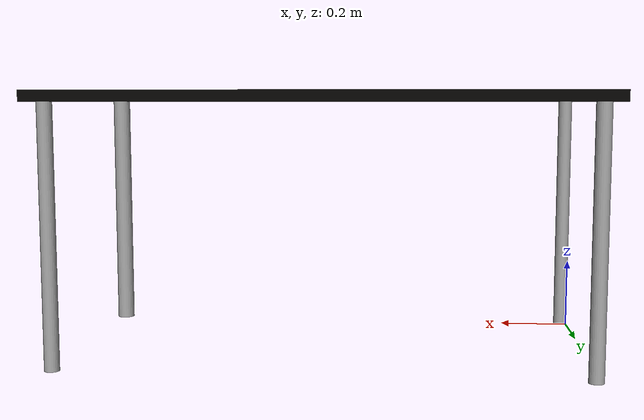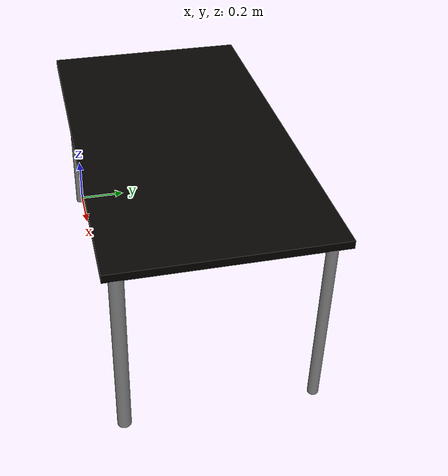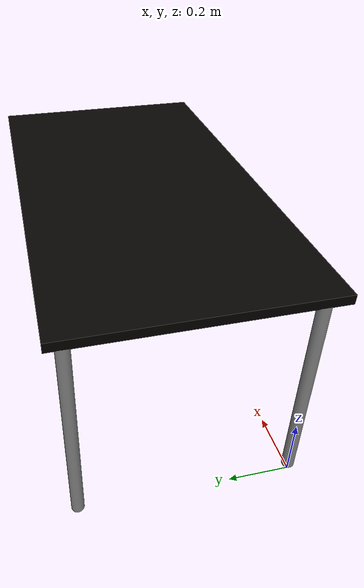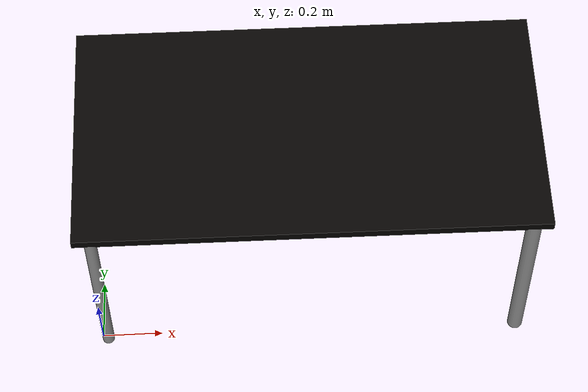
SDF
<?xml version="1.0" ?>
<sdf version="1.5">
  <model name="stol">
    <static>true</static>
    <link name="link">
      <collision name="collision">
        <geometry>
          <mesh>
            <uri>model://stol/meshes/Stol.dae</uri>
          </mesh>
        </geometry>
      </collision>
      <visual name="visual">
        <geometry>
          <mesh>
            <uri>model://stol/meshes/Stol.dae</uri>
          </mesh>
        </geometry>
      </visual>
    </link>
  </model>
</sdf>
